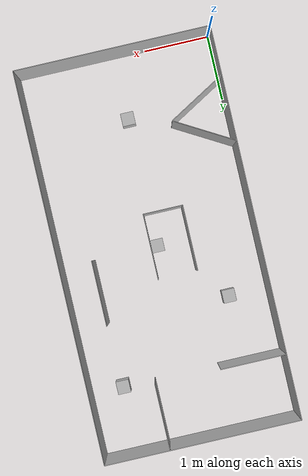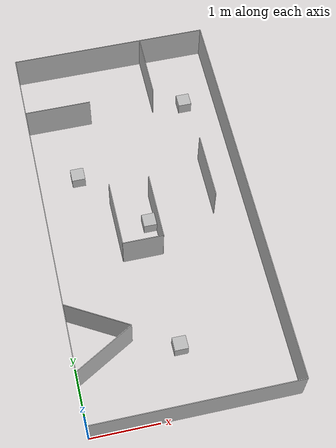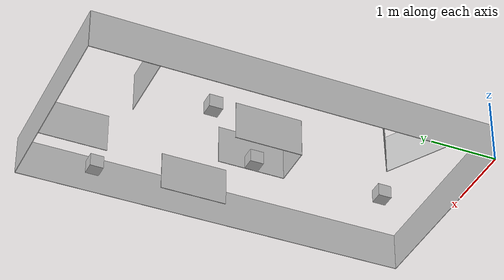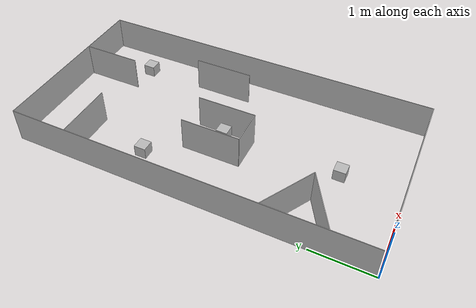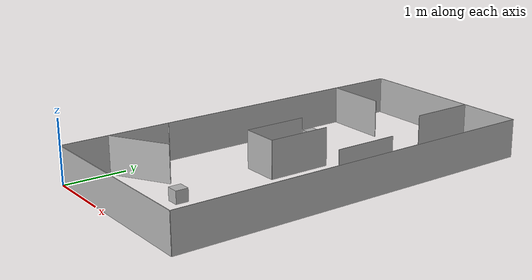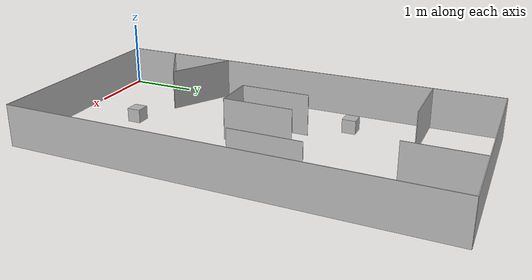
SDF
<sdf version="1.5">
  <model name="maze_map">
    <static>true</static>
    <link name="maze_link">
      <!-- ===================== BOUNDARY WALLS (3m x 6m) ===================== -->
      <collision name="wall_left_collision">
        <pose>0 3 0.3 0 0 0</pose>
        <geometry>
          <box>
            <size>0.01 6.0 0.6</size>
          </box>
        </geometry>
      </collision>
      <visual name="wall_left_visual">
        <pose>0 3 0.3 0 0 0</pose>
        <geometry>
          <box>
            <size>0.01 6.0 0.6</size>
          </box>
        </geometry>
      </visual>

      <collision name="wall_right_collision">
        <pose>3 3 0.3 0 0 0</pose>
        <geometry>
          <box>
            <size>0.01 6.0 0.6</size>
          </box>
        </geometry>
      </collision>
      <visual name="wall_right_visual">
        <pose>3 3 0.3 0 0 0</pose>
        <geometry>
          <box>
            <size>0.01 6.0 0.6</size>
          </box>
        </geometry>
      </visual>

      <collision name="wall_bottom_collision">
        <pose>1.5 0 0.3 0 0 0</pose>
        <geometry>
          <box>
            <size>3.0 0.01 0.6</size>
          </box>
        </geometry>
      </collision>
      <visual name="wall_bottom_visual">
        <pose>1.5 0 0.3 0 0 0</pose>
        <geometry>
          <box>
            <size>3.0 0.01 0.6</size>
          </box>
        </geometry>
      </visual>

      <collision name="wall_top_collision">
        <pose>1.5 6 0.3 0 0 0</pose>
        <geometry>
          <box>
            <size>3.0 0.01 0.6</size>
          </box>
        </geometry>
      </collision>
      <visual name="wall_top_visual">
        <pose>1.5 6 0.3 0 0 0</pose>
        <geometry>
          <box>
            <size>3.0 0.01 0.6</size>
          </box>
        </geometry>
      </visual>

      <!-- ===================== SHORT WALLS NEAR TOP ===================== -->
      <collision name="wall_top_left_collision">
        <pose>0.5 5 0.3 0 0 0</pose>
        <geometry>
          <box>
            <size>1.0 0.01 0.6</size>
          </box>
        </geometry>
      </collision>
      <visual name="wall_top_left_visual">
        <pose>0.5 5 0.3 0 0 0</pose>
        <geometry>
          <box>
            <size>1.0 0.01 0.6</size>
          </box>
        </geometry>
      </visual>

      <collision name="wall_top_vertical_collision">
        <pose>2 5.5 0.3 0 0 0</pose>
        <geometry>
          <box>
            <size>0.01 1.0 0.6</size>
          </box>
        </geometry>
      </collision>
      <visual name="wall_top_vertical_visual">
        <pose>2 5.5 0.3 0 0 0</pose>
        <geometry>
          <box>
            <size>0.01 1.0 0.6</size>
          </box>
        </geometry>
      </visual>

      <collision name="wall_right_mid_collision">
        <pose>2.5 3.5 0.3 0 0 0</pose>
        <geometry>
          <box>
            <size>0.01 1.0 0.6</size>
          </box>
        </geometry>
      </collision>
      <visual name="wall_right_mid_visual">
        <pose>2.5 3.5 0.3 0 0 0</pose>
        <geometry>
          <box>
            <size>0.01 1.0 0.6</size>
          </box>
        </geometry>
      </visual>

      <!-- ===================== TRIANGULAR SHAPE (BOTTOM LEFT) ===================== -->

      <!-- Diagonal #1: line from (0,1.0) to (1.5,0). -->
      <collision name="triangle_line1_collision">
        <!-- Midpoint ~ (0.75, 0.5), length ~ 1.80, angle ~ -0.588 rad -->
        <pose>0.433 1.0 0.3 0 0 0.523</pose>
        <geometry>
          <box>
            <size>1.0 0.01 0.6</size>
          </box>
        </geometry>
      </collision>
      <visual name="triangle_line1_visual">
        <pose>0.433 1.0 0.3 0 0 0.523</pose>
        <geometry>
          <box>
            <size>1.00 0.01 0.6</size>
          </box>
        </geometry>
      </visual>

      <!-- Diagonal #2: line from (0,3.0) to (1.5,0). -->
      <collision name="triangle_line2_collision">
        <!-- Midpoint ~ (0.75, 1.5), length ~ 3.35, angle ~ -1.106 rad -->
        <pose>0.433 1.5 0.3 0 0 -0.523</pose>
        <geometry>
          <box>
            <size>1.0 0.01 0.6</size>
          </box>
        </geometry>
      </collision>
      <visual name="triangle_line2_visual">
        <pose>0.433 1.5 0.3 0 0 -0.523</pose>
        <geometry>
          <box>
            <size>1.0 0.01 0.6</size>
          </box>
        </geometry>
      </visual>

      <!-- ===================== “U” SHAPE IN CENTER ===================== -->
      <collision name="u_left_collision">
        <pose>1.0 3 0.3 0 0 0</pose>
        <geometry>
          <box>
            <size>0.01 1.0 0.6</size>
          </box>
        </geometry>
      </collision>
      <visual name="u_left_visual">
        <pose>1.0 3 0.3 0 0 0</pose>
        <geometry>
          <box>
            <size>0.01 1.0 0.6</size>
          </box>
        </geometry>
      </visual>

      <collision name="u_right_collision">
        <pose>1.6 3 0.3 0 0 0</pose>
        <geometry>
          <box>
            <size>0.01 1.0 0.6</size>
          </box>
        </geometry>
      </collision>
      <visual name="u_right_visual">
        <pose>1.6 3 0.3 0 0 0</pose>
        <geometry>
          <box>
            <size>0.01 1.0 0.6</size>
          </box>
        </geometry>
      </visual>

      <collision name="u_top_collision">
        <pose>1.3 2.5 0.3 0 0 0</pose>
        <geometry>
          <box>
            <size>0.6 0.01 0.6</size>
          </box>
        </geometry>
      </collision>
      <visual name="u_top_visual">
        <pose>1.3 2.5 0.3 0 0 0</pose>
        <geometry>
          <box>
            <size>0.6 0.01 0.6</size>
          </box>
        </geometry>
      </visual>

      <!-- ===================== BOXES (20cm each side) ===================== -->
      <!-- Box near top-left -->
      <collision name="box_left_collision">
        <pose>0.6 4.0 0.1 0 0 0</pose>
        <geometry>
          <box>
            <size>0.2 0.2 0.2</size>
          </box>
        </geometry>
      </collision>
      <visual name="box_left_visual">
        <pose>0.6 4.0 0.1 0 0 0</pose>
        <geometry>
          <box>
            <size>0.2 0.2 0.2</size>
          </box>
        </geometry>
      </visual>

      <!-- Box near top-right -->
      <collision name="box_top_right_collision">
        <pose>2.5 5.0 0.1 0 0 0</pose>
        <geometry>
          <box>
            <size>0.2 0.2 0.2</size>
          </box>
        </geometry>
      </collision>
      <visual name="box_top_right_visual">
        <pose>2.5 5.0 0.1 0 0 0</pose>
        <geometry>
          <box>
            <size>0.2 0.2 0.2</size>
          </box>
        </geometry>
      </visual>

      <!-- Box near bottom-center -->
      <collision name="box_bottom_center_collision">
        <pose>1.5 1.0 0.1 0 0 0</pose>
        <geometry>
          <box>
            <size>0.2 0.2 0.2</size>
          </box>
        </geometry>
      </collision>
      <visual name="box_bottom_center_visual">
        <pose>1.5 1.0 0.1 0 0 0</pose>
        <geometry>
          <box>
            <size>0.2 0.2 0.2</size>
          </box>
        </geometry>
      </visual>

      <!-- Box near center of the U -->
      <collision name="box_center_collision">
        <pose>1.5 3.0 0.1 0 0 0</pose>
        <geometry>
          <box>
            <size>0.2 0.2 0.2</size>
          </box>
        </geometry>
      </collision>
      <visual name="box_center_visual">
        <pose>1.5 3.0 0.1 0 0 0</pose>
        <geometry>
          <box>
            <size>0.2 0.2 0.2</size>
          </box>
        </geometry>
      </visual>

    </link>
  </model>
</sdf>
